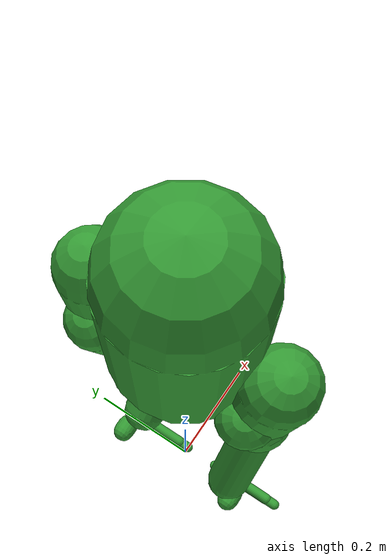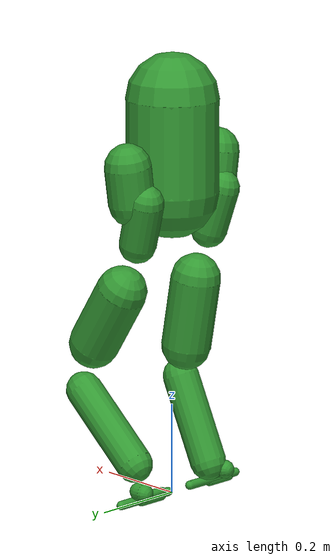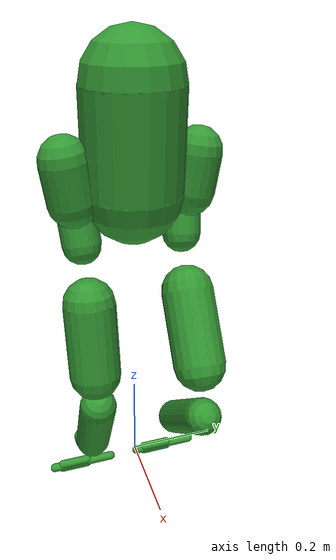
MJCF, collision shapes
<mujoco model="lerobot_humanoid_12dof_mjlab">
  <compiler angle="radian" meshdir="" autolimits="true"/>

  <default>
    <default class="lerobot">
      <default class="visual">
        <geom group="2" type="mesh" density="0" material="silver" contype="0" conaffinity="0"/>
      </default>
      <default class="collision">
        <geom group="3" rgba=".2 .6 .2 .3" type="capsule" contype="1" conaffinity="1"/>
        <default class="foot_capsule">
          <geom type="capsule" size="0.01"/>
        </default>
      </default>
      <site group="5" rgba="1 0 0 1"/>
    </default>
  </default>

  <asset>
    <material name="silver"    rgba="0.7 0.7 0.7 1"/>
    <material name="black"     rgba="0.2 0.2 0.2 1"/>
    <material name="blue"      rgba="0.231373 0.380392 0.705882 1"/>
    <material name="orange"    rgba="0.972549 0.529412 0.00392157 1"/>
    <material name="lightblue" rgba="0.615686 0.811765 0.929412 1"/>

    <!-- meshes (removed content_type + removed assets/ prefix because meshdir="assets") -->
    <mesh name="torso22" file="torso22.stl"/>
    <mesh name="robstrideo0" file="robstrideo0.stl"/>
    <mesh name="torso12" file="torso12.stl"/>
    <mesh name="hipz12" file="hipz12.stl"/>
    <mesh name="robstride02" file="robstride02.stl"/>
    <mesh name="hipz22" file="hipz22.stl"/>
    <mesh name="hipxy" file="hipxy.stl"/>
    <mesh name="knee_rod22" file="knee_rod22.stl"/>
    <mesh name="robstrideo3" file="robstrideo3.stl"/>
    <mesh name="knee_rod12" file="knee_rod12.stl"/>
    <mesh name="femur_22" file="femur_22.stl"/>
    <mesh name="femur_12" file="femur_12.stl"/>
    <mesh name="hat_femur" file="hat_femur.stl"/>
    <mesh name="part_3" file="part_3.stl"/>
    <mesh name="rmdx43" file="rmdx43.stl"/>
    <mesh name="tibias22" file="tibias22.stl"/>
    <mesh name="actuation_ankle" file="actuation_ankle.stl"/>
    <mesh name="tibias12" file="tibias12.stl"/>
    <mesh name="ujoint" file="ujoint.stl"/>
    <mesh name="spacer_ujoint" file="spacer_ujoint.stl"/>
    <mesh name="hat_small" file="hat_small.stl"/>
    <mesh name="foot" file="foot.stl"/>

    <mesh name="hipz22_sym" file="hipz22_sym.stl"/>
    <mesh name="hipz12_sym" file="hipz12_sym.stl"/>
    <mesh name="hipxy_sym" file="hipxy_sym.stl"/>
    <mesh name="knee_rod22_sym" file="knee_rod22_sym.stl"/>
    <mesh name="femur_12_sym" file="femur_12_sym.stl"/>
    <mesh name="femur_22_sym" file="femur_22_sym.stl"/>
    <mesh name="knee_rod12_sym" file="knee_rod12_sym.stl"/>
    <mesh name="tibias12_sym" file="tibias12_sym.stl"/>
    <mesh name="tibias22_sym" file="tibias22_sym.stl"/>

    <mesh name="torso_meshe" file="torso_meshe.stl"/>
    <mesh name="shoulder1_part" file="shoulder1_part.stl"/>
    <mesh name="shoulder2_part" file="shoulder2_part.stl"/>
    <mesh name="bearing_holder_upperbody" file="bearing_holder_upperbody.stl"/>
    <mesh name="shoulder3_part" file="shoulder3_part.stl"/>
    <mesh name="forarm_part" file="forarm_part.stl"/>
    <mesh name="torso_pperbody_part" file="torso_pperbody_part.stl"/>
  </asset>

  <worldbody>
    <body name="base" pos="0 0 0.72" childclass="lerobot">
      <light pos="0 0 2" mode="trackcom"/>
      <camera name="tracking" pos="1.734 -1.135 .35" xyaxes="0.552 0.834 -0.000 -0.170 0.112 0.979" mode="trackcom"/>

      <!-- Give the floating base a reasonable inertial (optional but recommended) -->
      <inertial pos="0 0 0" mass="3.7" diaginertia="0.0195228 0.00129235 0.0197822" />
      <freejoint name="floating_base_joint"/>

      <!-- ===== Visuals (converted to class="visual") ===== -->
      <geom class="visual" pos="-0.000263039 0.233572 -0.0901625" quat="1.86697e-07 -1.31359e-06 0.99005 -0.140713" mesh="torso22" material="blue"/>
      <geom class="visual" pos="0.672086 -0.147255 0.0629195" quat="0.00131867 -0.00114353 -0.655473 -0.755216" mesh="robstrideo0" material="blue"/>
      <geom class="visual" pos="0.672086 0.12555 0.0660044" quat="-0.00114353 0.00131866 0.755219 0.65547" mesh="robstrideo0" material="blue"/>
      <geom class="visual" pos="-0.000263039 4.05842e-07 -0.056966" quat="1.7604e-12 -1.32679e-06 -1 1.32679e-06" mesh="torso12" material="silver"/>
      <geom class="visual" pos="-0.000263039 4.05842e-07 -0.056966" quat="1.76045e-12 -1.32679e-06 -1 1.32679e-06" mesh="torso22" material="blue"/>
      <geom class="visual" pos="0.025 0.503548 0.0499987" quat="-1 2.65359e-06 0 0" mesh="torso_meshe" material="silver"/>

      <geom class="visual" pos="-0.0076156 0.0907452 0.254464" quat="0.851171 -0.218047 -0.443602 -0.176578" mesh="shoulder1_part" material="orange"/>
      <geom class="visual" pos="0.0145373 -0.0871188 0.209021" quat="-0.334809 -0.934655 0.0492556 0.109069" mesh="shoulder2_part" material="blue"/>
      <geom class="visual" pos="-0.0554525 -0.19219 0.091955" quat="0.917449 -0.232744 -0.295007 0.130721" mesh="bearing_holder_upperbody" material="silver"/>
      <geom class="visual" pos="0.0106251 -0.0781302 0.265738" quat="-0.701282 -0.487793 -0.400684 0.33123" mesh="bearing_holder_upperbody" material="silver"/>
      <geom class="visual" pos="0.191349 0.165659 0.127061" quat="-0.919895 -0.159921 -0.298903 -0.197168" mesh="shoulder3_part" material="silver"/>
      <geom class="visual" pos="0.16292 -0.199159 0.121232" quat="0.869203 -0.362747 -0.333087 0.0442065" mesh="forarm_part" material="lightblue"/>
      <geom class="visual" pos="-0.0205428 4.05842e-07 0.036034" mesh="torso_pperbody_part" material="orange"/>

      <!-- ===== Collisions (explicit simple shapes like your working MJLab XML) ===== -->
      <geom name="torso_collision" class="collision" size="0.1" fromto="0 0 -0.05 0 0 0.15"/>

      <!-- IMU site -->
      <site name="imu_in_base" size="0.01" pos="0 0 0"/>

      <!-- ================= RIGHT LEG ================= -->
      <body name="hipx_subassembly" pos="-0.000819037 -0.133159 0.04164" quat="0.821909 0.0571232 0.0414079 -0.565233">
        <inertial pos="-0.0179437 -0.0274254 -0.0837243" quat="0.401109 0.424615 -0.783452 0.212171" mass="0.794013" diaginertia="0.00115064 0.000967835 0.000726741"/>
        <joint name="hipz_right" pos="0 0 0" axis="0 0 1" range="-1.57 1.57"/>

        <geom class="visual" pos="0 0 -0.1" quat="1.32679e-06 -1 0 0" mesh="hipz12" material="blue"/>
        <geom class="visual" pos="-0.575896 0.0494047 -0.172196" quat="0.792907 -0.60316 -0.052417 -0.0689069" mesh="robstride02" material="lightblue"/>
        <geom class="visual" pos="0 0 -0.1" quat="1.32679e-06 -1 0 0" mesh="hipz22" material="silver"/>
        <geom name="right_hip_z_collision" class="collision" size="0.05" fromto="0 0 -0.02 0 0 -0.1"/>

        <body name="hipy_subassembly" pos="-0.01897 -0.0289 -0.09689" quat="0.388857 0.132751 0.0879726 -0.907429">
          <inertial pos="0.00476547 -0.00266343 -0.0607297" quat="0.916918 -0.328471 -0.0265972 0.225082" mass="0.241618" diaginertia="0.000514846 0.000474201 0.00039973"/>
          <joint name="hipx_right" pos="0 0 0" axis="0 0 1" range="-0.52 2.97"/>

          <geom class="visual" mesh="hipxy" material="silver"/>
          <geom name="right_hip_x_collision" class="collision" size="0.04" fromto="0 0 0 0 0 -0.1"/>

          <body name="tigh_subassembly" pos="0.012638 -0.0276823 -0.112055" quat="0.289458 0.00726303 0.73048 -0.618515">
            <inertial pos="0.0501976 0.0785779 -0.0353813" quat="0.64331 0.334215 -0.585819 0.362311" mass="2.5804" diaginertia="0.0237789 0.0223377 0.0035913"/>
            <joint name="hipy_right" pos="0 0 0" axis="0 0 1" range="-2.53 2.88"/>

            <geom class="visual" pos="0.210506 0.184547 -0.0305" quat="0.612371 0.612373 -0.353555 -0.353553" mesh="knee_rod22" material="lightblue"/>
            <geom class="visual" pos="-0.437806 0.570998 -0.07" quat="0.683011 -0.683014 0.183013 -0.183012" mesh="robstrideo3" material="silver"/>
            <geom class="visual" pos="0.210506 0.184547 -0.0305" quat="0.612371 0.612373 -0.353555 -0.353553" mesh="knee_rod12" material="lightblue"/>
            <geom class="visual" pos="0.17 0.294449 -0.0305" quat="0.683011 0.683014 -0.183013 -0.183012" mesh="femur_22" material="silver"/>
            <geom class="visual" pos="0.17 0.294449 -0.0305" quat="0.683011 0.683014 -0.183013 -0.183012" mesh="femur_12" material="lightblue"/>
            <geom class="visual" pos="0.17 0.294449 -0.0305" quat="0.683011 0.683014 -0.183013 -0.183012" mesh="hat_femur" material="orange"/>
            <geom class="visual" pos="0 0 -0.0938" quat="0.183014 -0.683011 0.183014 0.683014" mesh="part_3" material="blue"/>
            <geom class="visual" pos="-0.495806 0.470539 -0.0275" quat="0.683011 -0.683014 0.183013 -0.183012" mesh="robstrideo3" material="silver"/>

            <geom name="right_thigh_collision" class="collision" size="0.055" fromto="0.05 0.1 -0.03 0.1 0.25 -0.03"/>

            <body name="shin_subassembly" pos="0.17 0.294449 -0.0305" quat="1.27794e-06 0.963177 -0.26887 -3.56735e-07">
              <inertial pos="-0.0765467 -0.0486737 6.35117e-05" quat="-0.214439 0.670059 0.142077 0.696313" mass="0.593267" diaginertia="0.00177007 0.00173888 0.000242106"/>
              <joint name="knee_right" pos="0 0 0" axis="0 0 1" range="-0.087 2.88"/>

              <geom class="visual" pos="-0.2967 0.369726 0.019" quat="0.616798 0.6168 -0.345774 -0.345773" mesh="rmdx43" material="orange"/>
              <geom class="visual" pos="-0.221803 -0.135659 0.019" quat="0.616798 -0.6168 0.345774 -0.345773" mesh="tibias22" material="silver"/>
              <geom class="visual" pos="-0.0303217 0.125625 -0.019" quat="0.706277 0.706279 -0.0342294 -0.0342292" mesh="actuation_ankle" material="blue"/>
              <geom class="visual" pos="-0.341913 0.342073 0.006" quat="0.616798 0.6168 -0.345774 -0.345773" mesh="rmdx43" material="orange"/>
              <geom class="visual" pos="-0.221803 -0.135659 0.019" quat="0.616798 -0.6168 0.345774 -0.345773" mesh="tibias12" material="lightblue"/>
              <geom class="visual" pos="-0.105319 -0.208585 0.019" quat="0.706277 -0.706279 0.0342294 -0.0342292" mesh="actuation_ankle" material="blue"/>

              <geom name="right_shin_collision" class="collision" size="0.04" fromto="-0.05 0 0 -0.2 -0.13 0"/>

              <body name="ankle_subassembly" pos="-0.221803 -0.135659 0.02" quat="1.10817e-06 -0.835222 -0.549913 7.29622e-07">
                <inertial pos="-1.62086e-08 -0.000727483 0.02" mass="0.0168168" diaginertia="5.19458e-06 4.86353e-06 8.35665e-07"/>
                <joint name="ankley_right" pos="0 0 0" axis="0 0 1" range="-0.87 0.52"/>

                <geom class="visual" pos="0 0 0.02" quat="9.38184e-07 0.707105 9.38187e-07 -0.707108" mesh="ujoint" material="lightblue"/>
                <geom class="visual" pos="0 0 0.02" quat="0.71462 0 -0.699512 0" mesh="spacer_ujoint" material="silver"/>
                <geom class="visual" pos="0 0 0.0195" quat="9.38184e-07 0.707105 9.38187e-07 -0.707108" mesh="part_3" material="blue"/>
                <geom name="right_ankle_y_collision" class="collision" size="0.02" fromto="0 0 0 0 -0.015 0"/>

                <body name="foot_subassembly" pos="0 -0.01594 0.02" quat="0.499998 0.5 0.5 -0.500002">
                  <inertial pos="8.52312e-09 -0.0138418 -0.052232" quat="0.705627 0.0421767 -0.042203 0.706067" mass="0.122498" diaginertia="0.000163602 0.000163413 6.9433e-05"/>
                  <joint name="anklex_right" pos="0 0 0" axis="0 0 1" range="-0.26 0.26"/>

                  <geom class="visual" pos="0 -0.035 -0.0385" quat="0.499998 -0.5 -0.5 -0.500002" mesh="hat_small" material="orange"/>
                  <geom class="visual" pos="0 -0.035 -0.0385" quat="0.499998 -0.5 -0.5 -0.500002" mesh="foot" material="silver"/>

                  <site name="right_foot" pos="0.04 -0.035 -0.055" size="0.01"/>

                  <!-- Foot collision capsules (like your working file) -->
                  <geom name="right_foot1_collision" class="foot_capsule" fromto="0.08 -0.03 -0.05 0.02 -0.03 -0.05"/>
                  <geom name="right_foot2_collision" class="foot_capsule" fromto="-0.04 -0.035 -0.05 0.10 -0.035 -0.05"/>
                  <geom name="right_foot3_collision" class="foot_capsule" fromto="0.08 -0.04 -0.05 0.02 -0.04 -0.05"/>
                </body>
              </body>
            </body>
          </body>
        </body>
      </body>

      <!-- ================= LEFT LEG ================= -->
      <!-- NOTE: kept your naming (hipx_subassemby_sym typo) but you may want to fix it -->
      <body name="hipx_subassemby_sym" pos="-0.000819037 0.13316 0.04164" quat="0.826606 -0.0574677 0.0409287 0.558341">
        <inertial pos="-0.0179432 0.0274245 -0.0837272" quat="0.424685 0.401162 -0.212175 0.783386" mass="0.794016" diaginertia="0.0011506 0.000967878 0.000726822"/>
        <joint name="hipz_left" pos="0 0 0" axis="0 0 1" range="-1.57 1.57"/>

        <geom class="visual" pos="-0.575896 0.057308 -0.20175" quat="0.603161 -0.792907 -0.068907 -0.0524169" mesh="robstride02" material="lightblue"/>
        <geom class="visual" pos="0 0 0.1" quat="1 0 0 0" mesh="hipz22_sym" material="blue"/>
        <geom class="visual" pos="0 0 0.1" quat="1 0 0 0" mesh="hipz12_sym" material="silver"/>
        <geom name="left_hip_z_collision" class="collision" size="0.05" fromto="0 0 -0.02 0 0 -0.1"/>

        <body name="hipy_subassembly_sym" pos="-0.01897 0.0289 -0.09689" quat="0.37858 -0.131748 0.0894679 0.911765">
          <inertial pos="0.0047654 0.00266393 -0.0607296" quat="0.916914 0.328483 -0.0266015 -0.225077" mass="0.241619" diaginertia="0.000514848 0.000474202 0.000399736"/>
          <joint name="hipx_left" pos="0 0 0" axis="0 0 1" range="-2.97 0.52"/>

          <geom class="visual" quat="1.32679e-06 -1 0 0" mesh="hipxy_sym" material="silver"/>
          <geom name="left_hip_x_collision" class="collision" size="0.04" fromto="0 0 0 0 0 -0.1"/>

          <body name="tigh_subassembly_sym" pos="0.012638 0.0276823 -0.112055" quat="-0.0583156 0.358704 0.636384 0.680402">
            <inertial pos="-0.0431321 -0.0830741 -0.0353867" quat="0.584181 0.376186 -0.634805 0.337993" mass="2.5804" diaginertia="0.0240047 0.0225643 0.00359599"/>
            <joint name="hipy_left" pos="0 0 0" axis="0 0 1" range="-2.53 2.88"/>

            <geom class="visual" pos="-0.058 -0.280519 0.0295" quat="0.707105 -0.707108 0 0" mesh="knee_rod22_sym" material="lightblue"/>
            <geom class="visual" pos="0 0 -0.0938" quat="0.683011 0.183012 0.683014 -0.183013" mesh="part_3" material="blue"/>
            <geom class="visual" pos="-0.17 -0.294449 0.0295" quat="0.683011 -0.683014 0.183013 -0.183012" mesh="femur_12_sym" material="lightblue"/>
            <geom class="visual" pos="-0.17 -0.294449 0.0295" quat="0.683011 -0.683014 0.183013 -0.183012" mesh="femur_22_sym" material="silver"/>
            <geom class="visual" pos="-0.17 -0.294449 -0.0305" quat="0.183014 0.183014 0.683014 0.683011" mesh="hat_femur" material="orange"/>
            <geom class="visual" pos="0.655402 -0.194111 -0.0025" quat="0.183014 0.183014 0.683014 0.683011" mesh="robstrideo3" material="silver"/>
            <geom class="visual" pos="-0.058 -0.280519 0.0295" quat="0.707105 -0.707108 0 0" mesh="knee_rod12_sym" material="lightblue"/>
            <geom class="visual" pos="0.597402 -0.29457 -0.045" quat="0.183014 0.183014 0.683014 0.683011" mesh="robstrideo3" material="silver"/>

            <geom name="left_thigh_collision" class="collision" size="0.055" fromto="-0.05 -0.1 -0.03 -0.1 -0.25 -0.03"/>

            <body name="shin_subassembly_sym" pos="-0.17 -0.294449 -0.0305" quat="0.723236 0 0 -0.690601">
              <inertial pos="0.0013467 -0.0907957 -1.51262e-05" quat="0.517853 0.46831 -0.499624 0.512728" mass="0.593266" diaginertia="0.001766 0.00173991 0.000234541"/>
              <joint name="knee_left" pos="0 0 0" axis="0 0 1" range="-0.087 2.88"/>

              <geom class="visual" pos="0 -0.26 0.067" quat="0.707105 -0.707108 0 0" mesh="tibias12_sym" material="lightblue"/>
              <geom class="visual" pos="0.12299 -0.14568 0.0195" quat="0.632813 -0.632815 -0.31551 0.315509" mesh="actuation_ankle" material="blue"/>
              <geom class="visual" pos="0.470217 -0.113201 -0.006" quat="9.38184e-07 -9.38187e-07 0.707108 -0.707105" mesh="rmdx43" material="orange"/>
              <geom class="visual" pos="0.470217 -0.0457991 0.006" quat="9.38184e-07 9.38187e-07 -0.707108 -0.707105" mesh="rmdx43" material="orange"/>
              <geom class="visual" pos="0 -0.26 0.067" quat="0.707105 -0.707108 0 0" mesh="tibias22_sym" material="silver"/>
              <geom class="visual" pos="-0.12299 -0.0133205 -0.0195" quat="0.632813 0.632815 0.31551 0.315509" mesh="actuation_ankle" material="blue"/>

              <geom name="left_shin_collision" class="collision" size="0.04" fromto="0.05 0 0 0 -0.2 0"/>

              <body name="ankle_subassembly_2" pos="0 -0.26 -0.02" quat="0.888105 0 0 -0.459641">
                <inertial pos="1.62086e-08 -0.000727483 0.02" mass="0.0168168" diaginertia="5.19458e-06 4.86353e-06 8.35665e-07"/>
                <joint name="ankley_left" pos="0 0 0" axis="0 0 1" range="-0.87 0.52"/>

                <geom class="visual" pos="0 0 0.02" quat="9.38184e-07 -0.707105 -9.38187e-07 -0.707108" mesh="ujoint" material="lightblue"/>
                <geom class="visual" pos="0 0 0.02" quat="0.699512 -2.00452e-08 0.71462 -2.00452e-08" mesh="spacer_ujoint" material="silver"/>
                <geom class="visual" pos="0 0 0.0195" quat="9.38184e-07 0.707105 9.38187e-07 -0.707108" mesh="part_3" material="blue"/>
                <geom name="left_ankle_y_collision" class="collision" size="0.02" fromto="0 0 0 0 -0.015 0"/>

                <body name="foot_subassembly_2" pos="0 -0.01594 0.02" quat="0.501733 0.501734 -0.498259 0.498261">
                  <inertial pos="8.52312e-09 -0.0138418 -0.052232" quat="0.705627 0.0421767 -0.042203 0.706067" mass="0.122498" diaginertia="0.000163602 0.000163413 6.9433e-05"/>
                  <joint name="anklex_left" pos="0 0 0" axis="0 0 1" range="-0.26 0.26"/>

                  <geom class="visual" pos="0 -0.035 -0.0385" quat="0.499998 -0.5 -0.5 -0.500002" mesh="hat_small" material="orange"/>
                  <geom class="visual" pos="0 -0.035 -0.0385" quat="0.499998 -0.5 -0.5 -0.500002" mesh="foot" material="silver"/>

                  <site name="left_foot" pos="0.04 -0.035 -0.055" size="0.01"/>

                  <geom name="left_foot1_collision" class="foot_capsule" fromto="0.08 -0.03 -0.05 0.02 -0.03 -0.05"/>
                  <geom name="left_foot2_collision" class="foot_capsule" fromto="-0.04 -0.035 -0.05 0.10 -0.035 -0.05"/>
                  <geom name="left_foot3_collision" class="foot_capsule" fromto="0.08 -0.04 -0.05 0.02 -0.04 -0.05"/>
                </body>
              </body>
            </body>
          </body>
        </body>
      </body>
    </body>
  </worldbody>

  <contact>
    <!-- mirror what you already do in your working models -->
    <exclude body1="base" body2="hipy_subassembly"/>
    <exclude body1="base" body2="hipy_subassembly_sym"/>
  </contact>

  <sensor>
    <gyro name="imu_ang_vel" site="imu_in_base"/>
    <velocimeter name="imu_lin_vel" site="imu_in_base"/>
    <accelerometer name="imu_lin_acc" site="imu_in_base"/>
  </sensor>
</mujoco>
